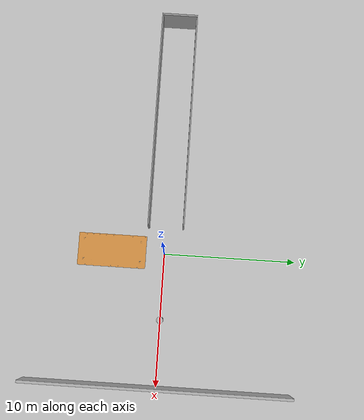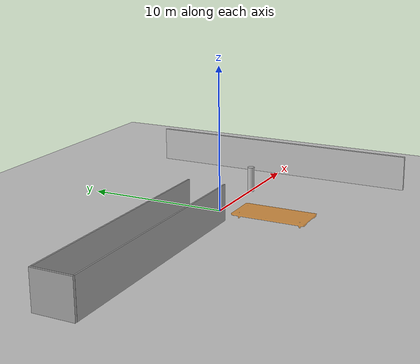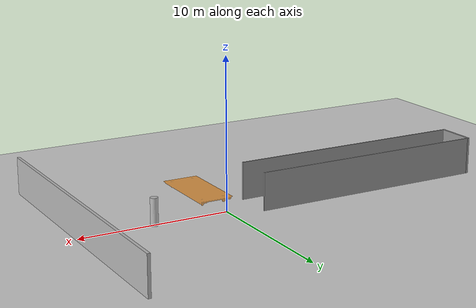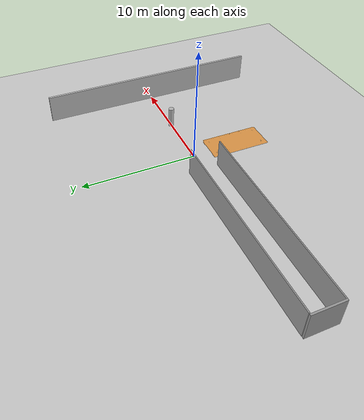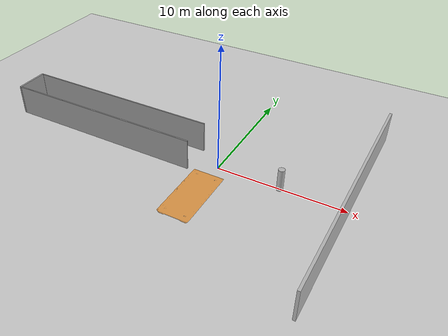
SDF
<?xml version="1.0"?>
<sdf version="1.4">
  <world name="default">
    <include>
      <uri>model://ground_plane</uri>
    </include>
    <include>
      <uri>model://sun</uri>
    </include>

    <!-- Wall in front (positive X direction) -->
    <include>
      <uri>model://simple_wall</uri>
      <name>front_wall</name>
      <pose>10 0 1.25  0 0 0</pose>
    </include>

    <!-- Truck at back (negative X direction) -->
    <include>
      <uri>model://truck</uri>
      <name>truck_model</name>
      <pose>-10 0 0  0 0 1.5708</pose>
    </include>

    <!-- Tray -->
    <include>
      <uri>model://tray</uri>
      <name>tray_model</name>
      <pose>0 -4 0  0 0 0</pose>
    </include>

    <!-- Sliding person (controllable via /person_vel topic) -->
    <include>
      <uri>model://walking_person</uri>
      <pose>5 0 0 0 0 0</pose>
    </include>

  </world>
</sdf>

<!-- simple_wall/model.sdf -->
<sdf version="1.4">
  <model name="simple_wall">
    <static>true</static>
    <link name="wall_link">
      <visual name="visual">
        <geometry>
          <box>
            <size>0.2 20 2.5</size>
          </box>
        </geometry>
      </visual>
      <collision name="collision">
        <geometry>
          <box>
            <size>0.2 20 2.5</size>
          </box>
        </geometry>
      </collision>
    </link>
  </model>
</sdf>

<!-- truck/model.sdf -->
<sdf version='1.6'>
  <model name='Truck'>
    <link name='Wall_0'>
      <pose frame=''>-1.3073 0 0 0 0 -1.5708</pose>
      <self_collide>0</self_collide>
      <enable_wind>0</enable_wind>
      <kinematic>0</kinematic>
      <gravity>1</gravity>
      <inertial>
        <mass>1</mass>
        <pose frame=''>0 0 0 0 -0 0</pose>
        <inertia>
          <ixx>1</ixx>
          <ixy>0</ixy>
          <ixz>0</ixz>
          <iyy>1</iyy>
          <iyz>0</iyz>
          <izz>1</izz>
        </inertia>
      </inertial>
      <visual name='Wall_0_Visual'>
        <pose frame=''>0 0 1.4 0 -0 0</pose>
        <geometry>
          <box>
            <size>16.2358 0.1 2.5</size>
          </box>
        </geometry>
        <material>
          <script>
            <uri>file://media/materials/scripts/gazebo.material</uri>
            <name>Gazebo/Grey</name>
          </script>
          <ambient>1 1 1 1</ambient>
          <shader type='vertex'>
            <normal_map>__default__</normal_map>
          </shader>
          <diffuse>0.7 0.7 0.7 1</diffuse>
          <specular>0.01 0.01 0.01 1</specular>
          <emissive>0 0 0 1</emissive>
        </material>
        <meta>
          <layer>0</layer>
        </meta>
        <transparency>0</transparency>
        <cast_shadows>1</cast_shadows>
      </visual>
      <collision name='Wall_0_Collision'>
        <laser_retro>0</laser_retro>
        <max_contacts>10</max_contacts>
        <pose frame=''>0 0 1.4 0 -0 0</pose>
        <geometry>
          <box>
            <size>16.14 0.1 2.5</size>
          </box>
        </geometry>
        <surface>
          <friction>
            <ode>
              <mu>1</mu>
              <mu2>1</mu2>
              <fdir1>0 0 0</fdir1>
              <slip1>0</slip1>
              <slip2>0</slip2>
            </ode>
            <torsional>
              <coefficient>1</coefficient>
              <patch_radius>0</patch_radius>
              <surface_radius>0</surface_radius>
              <use_patch_radius>1</use_patch_radius>
              <ode>
                <slip>0</slip>
              </ode>
            </torsional>
          </friction>
          <bounce>
            <restitution_coefficient>0</restitution_coefficient>
            <threshold>1e+06</threshold>
          </bounce>
          <contact>
            <collide_without_contact>0</collide_without_contact>
            <collide_without_contact_bitmask>1</collide_without_contact_bitmask>
            <collide_bitmask>1</collide_bitmask>
            <ode>
              <soft_cfm>0</soft_cfm>
              <soft_erp>0.2</soft_erp>
              <kp>1e+13</kp>
              <kd>1</kd>
              <max_vel>0.01</max_vel>
              <min_depth>0</min_depth>
            </ode>
            <bullet>
              <split_impulse>1</split_impulse>
              <split_impulse_penetration_threshold>-0.01</split_impulse_penetration_threshold>
              <soft_cfm>0</soft_cfm>
              <soft_erp>0.2</soft_erp>
              <kp>1e+13</kp>
              <kd>1</kd>
            </bullet>
          </contact>
        </surface>
      </collision>
    </link>
    <link name='Wall_2'>
      <pose frame=''>0 8.193 0 0 -0 3.14159</pose>
      <self_collide>0</self_collide>
      <enable_wind>0</enable_wind>
      <kinematic>0</kinematic>
      <gravity>1</gravity>
      <inertial>
        <mass>1</mass>
        <pose frame=''>0 0 0 0 -0 0</pose>
        <inertia>
          <ixx>1</ixx>
          <ixy>0</ixy>
          <ixz>0</ixz>
          <iyy>1</iyy>
          <iyz>0</iyz>
          <izz>1</izz>
        </inertia>
      </inertial>
      <visual name='Wall_2_Visual'>
        <pose frame=''>0 0 1.4 0 -0 0</pose>
        <geometry>
          <box>
            <size>2.7 0.15 2.5</size>
          </box>
        </geometry>
        <material>
          <script>
            <uri>file://media/materials/scripts/gazebo.material</uri>
            <name>Gazebo/Grey</name>
          </script>
          <ambient>1 1 1 1</ambient>
          <shader type='vertex'>
            <normal_map>__default__</normal_map>
          </shader>
          <diffuse>0.7 0.7 0.7 1</diffuse>
          <specular>0.01 0.01 0.01 1</specular>
          <emissive>0 0 0 1</emissive>
        </material>
        <meta>
          <layer>0</layer>
        </meta>
        <transparency>0</transparency>
        <cast_shadows>1</cast_shadows>
      </visual>
      <collision name='Wall_2_Collision'>
        <laser_retro>0</laser_retro>
        <max_contacts>10</max_contacts>
        <pose frame=''>0 0 1.4 0 -0 0</pose>
        <geometry>
          <box>
            <size>2.7 0.15 2.5</size>
          </box>
        </geometry>
        <surface>
          <friction>
            <ode>
              <mu>1</mu>
              <mu2>1</mu2>
              <fdir1>0 0 0</fdir1>
              <slip1>0</slip1>
              <slip2>0</slip2>
            </ode>
            <torsional>
              <coefficient>1</coefficient>
              <patch_radius>0</patch_radius>
              <surface_radius>0</surface_radius>
              <use_patch_radius>1</use_patch_radius>
              <ode>
                <slip>0</slip>
              </ode>
            </torsional>
          </friction>
          <bounce>
            <restitution_coefficient>0</restitution_coefficient>
            <threshold>1e+06</threshold>
          </bounce>
          <contact>
            <collide_without_contact>0</collide_without_contact>
            <collide_without_contact_bitmask>1</collide_without_contact_bitmask>
            <collide_bitmask>1</collide_bitmask>
            <ode>
              <soft_cfm>0</soft_cfm>
              <soft_erp>0.2</soft_erp>
              <kp>1e+13</kp>
              <kd>1</kd>
              <max_vel>0.01</max_vel>
              <min_depth>0</min_depth>
            </ode>
            <bullet>
              <split_impulse>1</split_impulse>
              <split_impulse_penetration_threshold>-0.01</split_impulse_penetration_threshold>
              <soft_cfm>0</soft_cfm>
              <soft_erp>0.2</soft_erp>
              <kp>1e+13</kp>
              <kd>1</kd>
            </bullet>
          </contact>
        </surface>
      </collision>
    </link>
    <link name='Wall_6'>
      <pose frame=''>1.3073 0 0 0 0 -1.5708</pose>
      <self_collide>0</self_collide>
      <enable_wind>0</enable_wind>
      <kinematic>0</kinematic>
      <gravity>1</gravity>
      <inertial>
        <mass>1</mass>
        <pose frame=''>0 0 0 0 -0 0</pose>
        <inertia>
          <ixx>1</ixx>
          <ixy>0</ixy>
          <ixz>0</ixz>
          <iyy>1</iyy>
          <iyz>0</iyz>
          <izz>1</izz>
        </inertia>
      </inertial>
      <visual name='Wall_6_Visual'>
        <pose frame=''>0 0 1.4 0 -0 0</pose>
        <geometry>
          <box>
            <size>16.14 0.1 2.5</size>
          </box>
        </geometry>
        <material>
          <script>
            <uri>file://media/materials/scripts/gazebo.material</uri>
            <name>Gazebo/Grey</name>
          </script>
          <ambient>1 1 1 1</ambient>
          <shader type='vertex'>
            <normal_map>__default__</normal_map>
          </shader>
          <diffuse>0.7 0.7 0.7 1</diffuse>
          <specular>0.01 0.01 0.01 1</specular>
          <emissive>0 0 0 1</emissive>
        </material>
        <meta>
          <layer>0</layer>
        </meta>
        <transparency>0</transparency>
        <cast_shadows>1</cast_shadows>
      </visual>
      <collision name='Wall_6_Collision'>
        <laser_retro>0</laser_retro>
        <max_contacts>10</max_contacts>
        <pose frame=''>0 0 1.4 0 -0 0</pose>
        <geometry>
          <box>
            <size>16.14 0.1 2.5</size>
          </box>
        </geometry>
        <surface>
          <friction>
            <ode>
              <mu>1</mu>
              <mu2>1</mu2>
              <fdir1>0 0 0</fdir1>
              <slip1>0</slip1>
              <slip2>0</slip2>
            </ode>
            <torsional>
              <coefficient>1</coefficient>
              <patch_radius>0</patch_radius>
              <surface_radius>0</surface_radius>
              <use_patch_radius>1</use_patch_radius>
              <ode>
                <slip>0</slip>
              </ode>
            </torsional>
          </friction>
          <bounce>
            <restitution_coefficient>0</restitution_coefficient>
            <threshold>1e+06</threshold>
          </bounce>
          <contact>
            <collide_without_contact>0</collide_without_contact>
            <collide_without_contact_bitmask>1</collide_without_contact_bitmask>
            <collide_bitmask>1</collide_bitmask>
            <ode>
              <soft_cfm>0</soft_cfm>
              <soft_erp>0.2</soft_erp>
              <kp>1e+13</kp>
              <kd>1</kd>
              <max_vel>0.01</max_vel>
              <min_depth>0</min_depth>
            </ode>
            <bullet>
              <split_impulse>1</split_impulse>
              <split_impulse_penetration_threshold>-0.01</split_impulse_penetration_threshold>
              <soft_cfm>0</soft_cfm>
              <soft_erp>0.2</soft_erp>
              <kp>1e+13</kp>
              <kd>1</kd>
            </bullet>
          </contact>
        </surface>
      </collision>
    </link>
    <static>1</static>
    <allow_auto_disable>1</allow_auto_disable>
  </model>
</sdf>

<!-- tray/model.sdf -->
<sdf version='1.7'>
  <model name='tray'>
    <link name='tray_link'>
      <inertial>
        <mass>1</mass>
        <inertia>
          <ixx>0.166667</ixx>
          <ixy>0</ixy>
          <ixz>0</ixz>
          <iyy>0.166667</iyy>
          <iyz>0</iyz>
          <izz>0.166667</izz>
        </inertia>
      </inertial>
      <pose>0 0 0.3 0 0 0</pose>
      <visual name='visual'>
        <pose>0 0 -0.263525 0 0 1.570796</pose>
        <geometry>
          <mesh>
            <uri>meshes/tray.stl</uri>
            <scale>1 1 1</scale>
          </mesh>
        </geometry>
        <material>
          <lighting>1</lighting>
          <script>
            <uri>file://media/materials/scripts/gazebo.material</uri>
            <name>Gazebo/Orange</name>
          </script>
          <shader type='pixel'/>
        </material>
        <transparency>0.3</transparency>
        <cast_shadows>1</cast_shadows>
      </visual>
      <collision name='collision'>
        <laser_retro>0</laser_retro>
        <max_contacts>10</max_contacts>
        <pose>0 0 -0.263525 0 0 1.570796</pose>
        <geometry>
          <mesh>
            <uri>meshes/tray.stl</uri>
            <scale>1 1 1</scale>
          </mesh>
        </geometry>
        <surface>
          <friction>
            <ode>
              <mu>1</mu>
              <mu2>1</mu2>
              <fdir1>0 0 0</fdir1>
              <slip1>0</slip1>
              <slip2>0</slip2>
            </ode>
            <torsional>
              <coefficient>1</coefficient>
              <patch_radius>0</patch_radius>
              <surface_radius>0</surface_radius>
              <use_patch_radius>1</use_patch_radius>
              <ode>
                <slip>0</slip>
              </ode>
            </torsional>
          </friction>
          <bounce>
            <restitution_coefficient>0</restitution_coefficient>
            <threshold>1e+06</threshold>
          </bounce>
          <contact>
            <collide_without_contact>0</collide_without_contact>
            <collide_without_contact_bitmask>1</collide_without_contact_bitmask>
            <collide_bitmask>1</collide_bitmask>
            <ode>
              <soft_cfm>3</soft_cfm>
              <soft_erp>0.1</soft_erp>
              <kp>1e+5</kp>
              <kd>1</kd>
              <max_vel>0.01</max_vel>
              <min_depth>0</min_depth>
            </ode>
            <bullet>
              <split_impulse>1</split_impulse>
              <split_impulse_penetration_threshold>-0.01</split_impulse_penetration_threshold>
              <soft_cfm>3</soft_cfm>
              <soft_erp>0.1</soft_erp>
              <kp>1e+5</kp>
              <kd>1</kd>
            </bullet>
          </contact>
        </surface>
      </collision>
    </link>
    <static>true</static>
    <allow_auto_disable>1</allow_auto_disable>
  </model>
</sdf>

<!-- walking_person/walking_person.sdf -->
<sdf version='1.6'>
  <model name='sliding_person'>
    <pose>0 0 0 0 0 0</pose>
    <static>false</static>

    <link name='body'>
      <inertial>
        <mass>60.0</mass>
        <inertia>
          <ixx>1.0</ixx>
          <ixy>0</ixy>
          <ixz>0</ixz>
          <iyy>1.0</iyy>
          <iyz>0</iyz>
          <izz>1.0</izz>
        </inertia>
      </inertial>

      <collision name='collision'>
        <pose>0 0 0.9 0 0 0</pose>
        <geometry>
          <cylinder>
            <radius>0.25</radius>
            <length>1.8</length>
          </cylinder>
        </geometry>
      </collision>

      <visual name='visual'>
        <pose>0 0 0.9 0 0 0</pose>
        <geometry>
          <cylinder>
            <radius>0.25</radius>
            <length>1.8</length>
          </cylinder>
        </geometry>
      </visual>
    </link>

    <plugin name="person_controller" filename="libgazebo_ros_planar_move.so">
      <commandTopic>person_vel</commandTopic>
      <odometryTopic>person_odom</odometryTopic>
      <odometryFrame>person_odom</odometryFrame>
      <odometryRate>20.0</odometryRate>
      <robotBaseFrame>body</robotBaseFrame>
    </plugin>
  </model>
</sdf>
